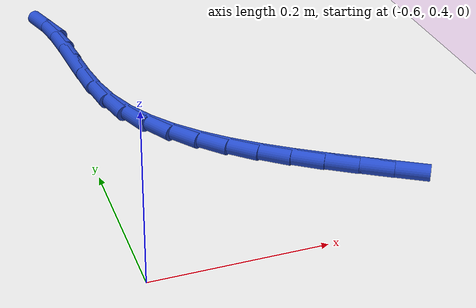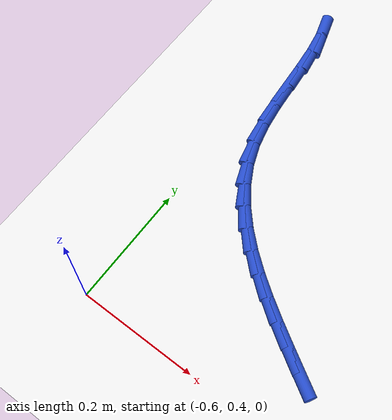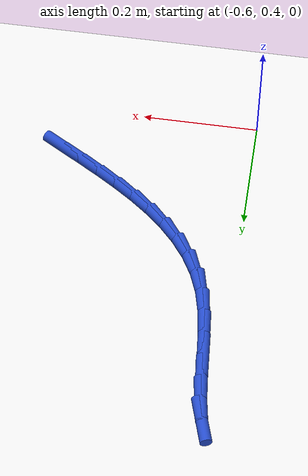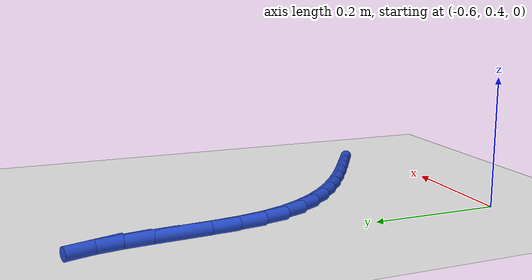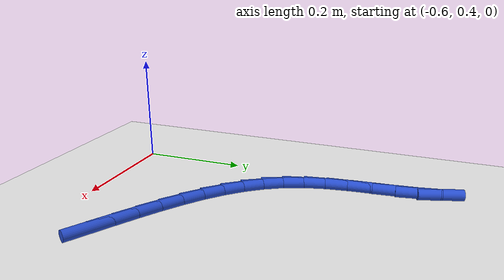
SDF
<sdf version="1.6">
 <world name="default">
  <model name="ground_plane">
   <static>1</static>
   <link name="link">
    <collision name="collision">
     <geometry><plane><normal>0 0 1</normal><size>100 100</size></plane></geometry>
     <surface><friction><ode><mu>100</mu><mu2>50</mu2></ode></friction></surface>
    </collision>
    <visual name="visual">
     <cast_shadows>0</cast_shadows>
     <geometry><plane><normal>0 0 1</normal><size>100 100</size></plane></geometry>
     <material>
      <script><uri>file://media/materials/scripts/gazebo.material</uri><name>Gazebo/WhiteGlow</name></script>
     </material>
    </visual>
   </link>
  </model>
  <model name="line">
   <link name="link_16">
    <pose>-0.2740870352004164 0.4943431059877467 0.01 0 1.57 -0.5348794290932097</pose>
    <collision name="collision">
     <geometry><cylinder><radius>0.01</radius><length>0.08</length></cylinder></geometry>
    </collision>
    <visual name="visual">
     <material>
      <script><name>Gazebo/Blue</name><uri>file://media/materials/scripts/gazebo.material</uri></script>
     </material>
     <geometry><cylinder><radius>0.01</radius><length>0.08</length></cylinder></geometry>
    </visual>
   </link>
   <link name="link_17">
    <pose>-0.30897337425952276 0.5150129265750402 0.01 0 1.57 -0.5455721922897313</pose>
    <collision name="collision">
     <geometry><cylinder><radius>0.01</radius><length>0.08</length></cylinder></geometry>
    </collision>
    <visual name="visual">
     <material>
      <script><name>Gazebo/Blue</name><uri>file://media/materials/scripts/gazebo.material</uri></script>
     </material>
     <geometry><cylinder><radius>0.01</radius><length>0.08</length></cylinder></geometry>
    </visual>
   </link>
   <link name="link_18">
    <pose>-0.3435405219331518 0.5359962034134895 0.01 0 1.57 -0.5700206003601942</pose>
    <collision name="collision">
     <geometry><cylinder><radius>0.01</radius><length>0.08</length></cylinder></geometry>
    </collision>
    <visual name="visual">
     <material>
      <script><name>Gazebo/Blue</name><uri>file://media/materials/scripts/gazebo.material</uri></script>
     </material>
     <geometry><cylinder><radius>0.01</radius><length>0.08</length></cylinder></geometry>
    </visual>
   </link>
   <link name="link_19">
    <pose>-0.3772852450473824 0.5576264904796324 0.01 0 1.57 -0.609016117247484</pose>
    <collision name="collision">
     <geometry><cylinder><radius>0.01</radius><length>0.08</length></cylinder></geometry>
    </collision>
    <visual name="visual">
     <material>
      <script><name>Gazebo/Blue</name><uri>file://media/materials/scripts/gazebo.material</uri></script>
     </material>
     <geometry><cylinder><radius>0.01</radius><length>0.08</length></cylinder></geometry>
    </visual>
   </link>
   <link name="link_20">
    <pose>-0.40970431042829325 0.5802373417500064 0.01 0 1.57 -0.6637386016183862</pose>
    <collision name="collision">
     <geometry><cylinder><radius>0.01</radius><length>0.08</length></cylinder></geometry>
    </collision>
    <visual name="visual">
     <material>
      <script><name>Gazebo/Blue</name><uri>file://media/materials/scripts/gazebo.material</uri></script>
     </material>
     <geometry><cylinder><radius>0.01</radius><length>0.08</length></cylinder></geometry>
    </visual>
   </link>
   <link name="link_21">
    <pose>-0.4402944849019629 0.6041623112011494 0.01 0 1.57 -0.7355532823651634</pose>
    <collision name="collision">
     <geometry><cylinder><radius>0.01</radius><length>0.08</length></cylinder></geometry>
    </collision>
    <visual name="visual">
     <material>
      <script><name>Gazebo/Blue</name><uri>file://media/materials/scripts/gazebo.material</uri></script>
     </material>
     <geometry><cylinder><radius>0.01</radius><length>0.08</length></cylinder></geometry>
    </visual>
   </link>
   <link name="link_22">
    <pose>-0.4685525352944704 0.6297349528095991 0.01 0 1.57 -0.8256051158203653</pose>
    <collision name="collision">
     <geometry><cylinder><radius>0.01</radius><length>0.08</length></cylinder></geometry>
    </collision>
    <visual name="visual">
     <material>
      <script><name>Gazebo/Blue</name><uri>file://media/materials/scripts/gazebo.material</uri></script>
     </material>
     <geometry><cylinder><radius>0.01</radius><length>0.08</length></cylinder></geometry>
    </visual>
   </link>
   <link name="link_23">
    <pose>-0.49397522843189434 0.657288820551893 0.01 0 1.57 -0.9341305927136866</pose>
    <collision name="collision">
     <geometry><cylinder><radius>0.01</radius><length>0.08</length></cylinder></geometry>
    </collision>
    <visual name="visual">
     <material>
      <script><name>Gazebo/Blue</name><uri>file://media/materials/scripts/gazebo.material</uri></script>
     </material>
     <geometry><cylinder><radius>0.01</radius><length>0.08</length></cylinder></geometry>
    </visual>
   </link>
   <link name="link_24">
    <pose>-0.5160593311403135 0.687157468404569 0.01 0 1.57 -1.0595411625086781</pose>
    <collision name="collision">
     <geometry><cylinder><radius>0.01</radius><length>0.08</length></cylinder></geometry>
    </collision>
    <visual name="visual">
     <material>
      <script><name>Gazebo/Blue</name><uri>file://media/materials/scripts/gazebo.material</uri></script>
     </material>
     <geometry><cylinder><radius>0.01</radius><length>0.08</length></cylinder></geometry>
    </visual>
   </link>
   <link name="link_25">
    <pose>-0.534301610245807 0.7196744503441652 0.01 0 1.57 -1.1976532402411308</pose>
    <collision name="collision">
     <geometry><cylinder><radius>0.01</radius><length>0.08</length></cylinder></geometry>
    </collision>
    <visual name="visual">
     <material>
      <script><name>Gazebo/Blue</name><uri>file://media/materials/scripts/gazebo.material</uri></script>
     </material>
     <geometry><cylinder><radius>0.01</radius><length>0.08</length></cylinder></geometry>
    </visual>
   </link>
   <link name="link_26">
    <pose>-0.5481988325744529 0.7551733203472184 0.01 0 1.57 -1.3338044163054625</pose>
    <collision name="collision">
     <geometry><cylinder><radius>0.01</radius><length>0.08</length></cylinder></geometry>
    </collision>
    <visual name="visual">
     <material>
      <script><name>Gazebo/Blue</name><uri>file://media/materials/scripts/gazebo.material</uri></script>
     </material>
     <geometry><cylinder><radius>0.01</radius><length>0.08</length></cylinder></geometry>
    </visual>
   </link>
   <link name="link_27">
    <pose>-0.5575195143480137 0.7937633534116468 0.01 0 1.57 -1.429081332650051</pose>
    <collision name="collision">
     <geometry><cylinder><radius>0.01</radius><length>0.08</length></cylinder></geometry>
    </collision>
    <visual name="visual">
     <material>
      <script><name>Gazebo/Blue</name><uri>file://media/materials/scripts/gazebo.material</uri></script>
     </material>
     <geometry><cylinder><radius>0.01</radius><length>0.08</length></cylinder></geometry>
    </visual>
   </link>
   <link name="link_28">
    <pose>-0.5633291056641021 0.8344834449516989 0.01 0 1.57 -1.4808205636777063</pose>
    <collision name="collision">
     <geometry><cylinder><radius>0.01</radius><length>0.08</length></cylinder></geometry>
    </collision>
    <visual name="visual">
     <material>
      <script><name>Gazebo/Blue</name><uri>file://media/materials/scripts/gazebo.material</uri></script>
     </material>
     <geometry><cylinder><radius>0.01</radius><length>0.08</length></cylinder></geometry>
    </visual>
   </link>
   <link name="link_29">
    <pose>-0.5670795316438053 0.8760535265682564 0.01 0 1.57 -1.4945405960229985</pose>
    <collision name="collision">
     <geometry><cylinder><radius>0.01</radius><length>0.08</length></cylinder></geometry>
    </collision>
    <visual name="visual">
     <material>
      <script><name>Gazebo/Blue</name><uri>file://media/materials/scripts/gazebo.material</uri></script>
     </material>
     <geometry><cylinder><radius>0.01</radius><length>0.08</length></cylinder></geometry>
    </visual>
   </link>
   <link name="link_30">
    <pose>-0.5702227834678856 0.9171934753421302 0.01 0 1.57 -1.4699953311609737</pose>
    <collision name="collision">
     <geometry><cylinder><radius>0.01</radius><length>0.08</length></cylinder></geometry>
    </collision>
    <visual name="visual">
     <material>
      <script><name>Gazebo/Blue</name><uri>file://media/materials/scripts/gazebo.material</uri></script>
     </material>
     <geometry><cylinder><radius>0.01</radius><length>0.08</length></cylinder></geometry>
    </visual>
   </link>
   <link name="link_31">
    <pose>-0.574210852317106 0.9566231683541315 0.01 0 1.57 -1.4000015076557584</pose>
    <collision name="collision">
     <geometry><cylinder><radius>0.01</radius><length>0.08</length></cylinder></geometry>
    </collision>
    <visual name="visual">
     <material>
      <script><name>Gazebo/Blue</name><uri>file://media/materials/scripts/gazebo.material</uri></script>
     </material>
     <geometry><cylinder><radius>0.01</radius><length>0.08</length></cylinder></geometry>
    </visual>
   </link>
   <link name="link_32">
    <pose>-0.5804957293722287 0.9930624826850704 0.01 0 1.57 -1.2684518321111597</pose>
    <collision name="collision">
     <geometry><cylinder><radius>0.01</radius><length>0.08</length></cylinder></geometry>
    </collision>
    <visual name="visual">
     <material>
      <script><name>Gazebo/Blue</name><uri>file://media/materials/scripts/gazebo.material</uri></script>
     </material>
     <geometry><cylinder><radius>0.01</radius><length>0.08</length></cylinder></geometry>
    </visual>
   </link>
  </model>
 </world>
</sdf>
